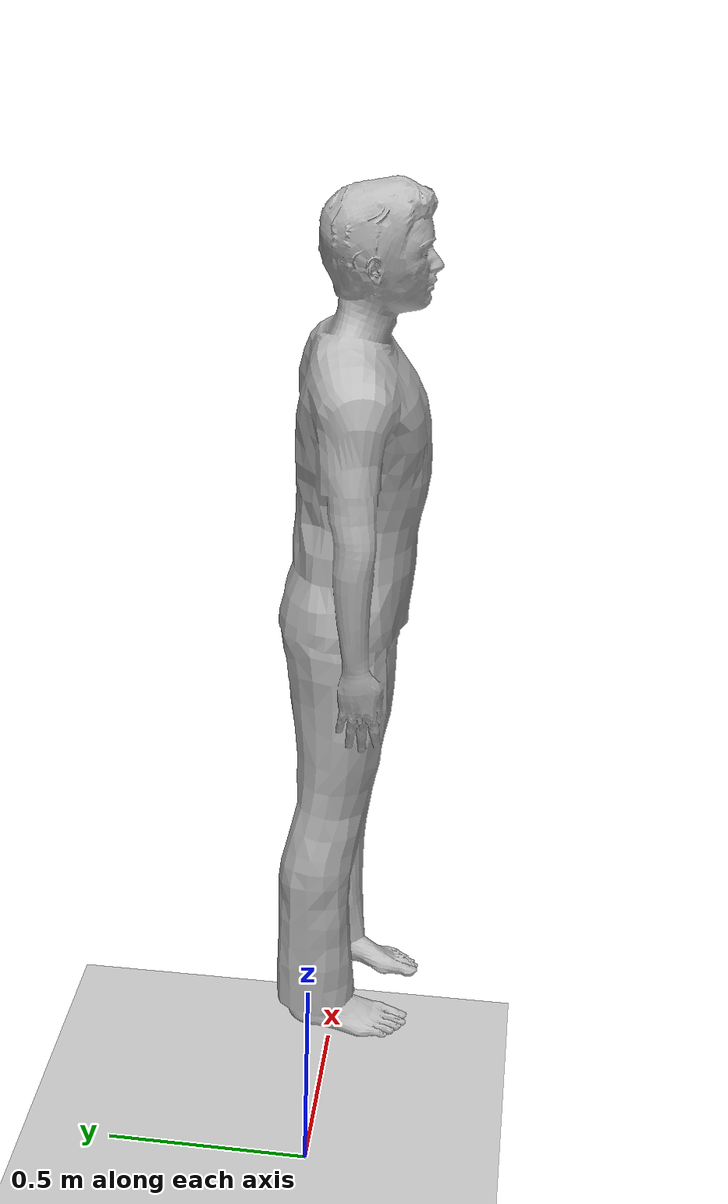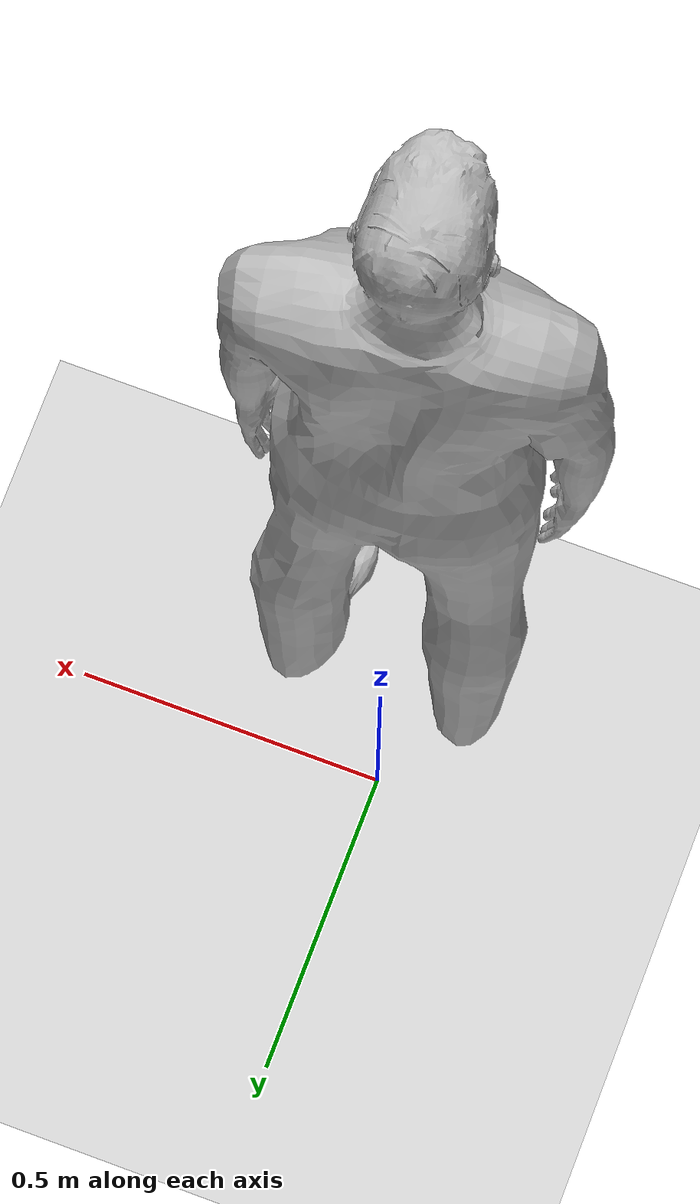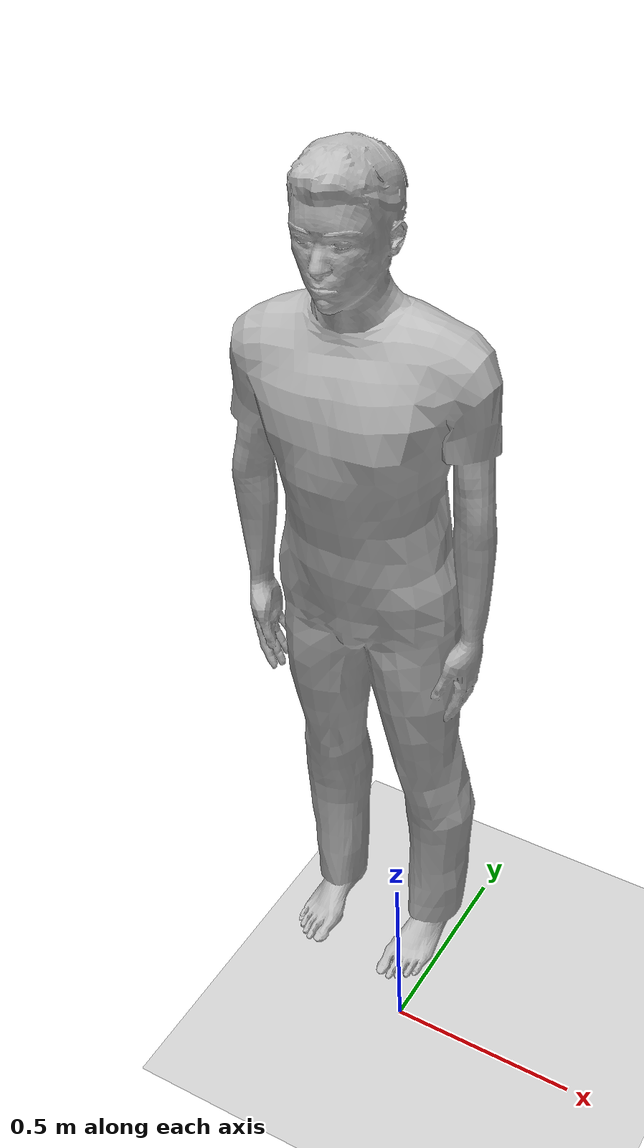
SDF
<?xml version="1.0" ?>
<sdf version="1.4">
  <world name="default">
    <include>
      <uri>model://ground_plane</uri>
    </include>

    <include>
      <uri>model://sun</uri>
    </include>

    <model name="person">
      <pose>0 0 0.5  0 0 0</pose>
      <include>
        <static>false</static>
        <uri>model://person_standing</uri>
      </include>
      <!-- reference to your plugin -->
      <plugin name="model_walk" filename="libmodel_walk.so"/>
    </model>
  </world>
</sdf>

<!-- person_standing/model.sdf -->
<sdf version="1.5">
  <model name="person_standing">
    <link name="link">
    <gravity>0</gravity>
      <inertial>
        <pose>0 -0.1 0.95 0 0 0</pose>
        <mass>80.0</mass>
        <inertia>
          <ixx>24.88</ixx>
          <ixy>0</ixy>
          <ixz>0</ixz>
          <iyy>25.73</iyy>
          <iyz>0</iyz>
          <izz>2.48</izz>
        </inertia>
      </inertial>

      <collision name="bottom">
        <pose>0 -0.1 0.01 0 0 0</pose>
        <geometry>
          <box>
            <size>0.5 0.35 0.02</size>
          </box>
        </geometry>
      </collision>

      <collision name="person">
        <pose>0 0 0.02 0.04 0 0</pose>
        <geometry>
          <mesh>
            <uri>model://person_standing/meshes/standing.dae</uri>
          </mesh>
        </geometry>
      </collision>

      <visual name="visual">
        <pose>0 0 0.02 0.04 0 0</pose>
        <geometry>
          <mesh>
            <uri>model://person_standing/meshes/standing.dae</uri>
          </mesh>
        </geometry>
      </visual>
    </link>
    <plugin name="model_walk" filename="libmodel_walk.so"/>
  </model>
</sdf>
